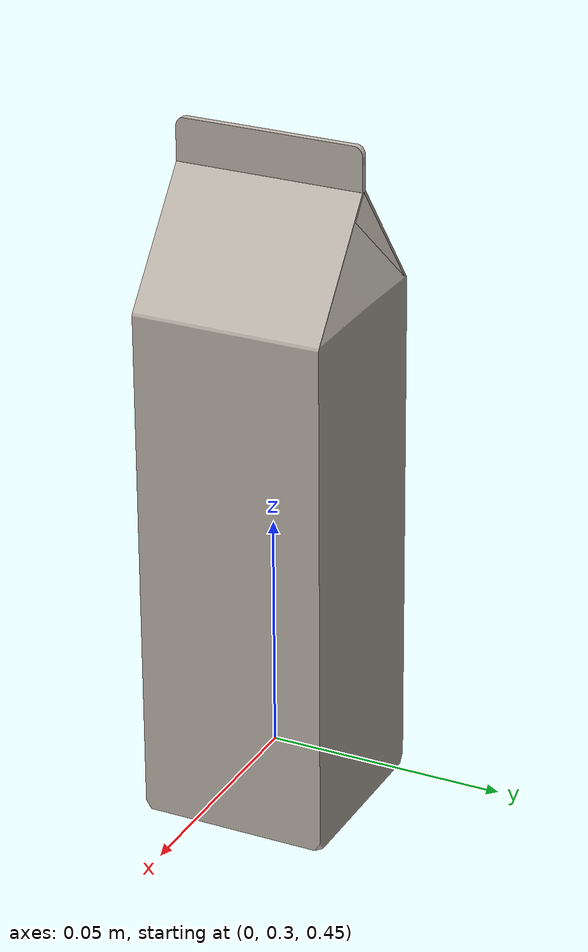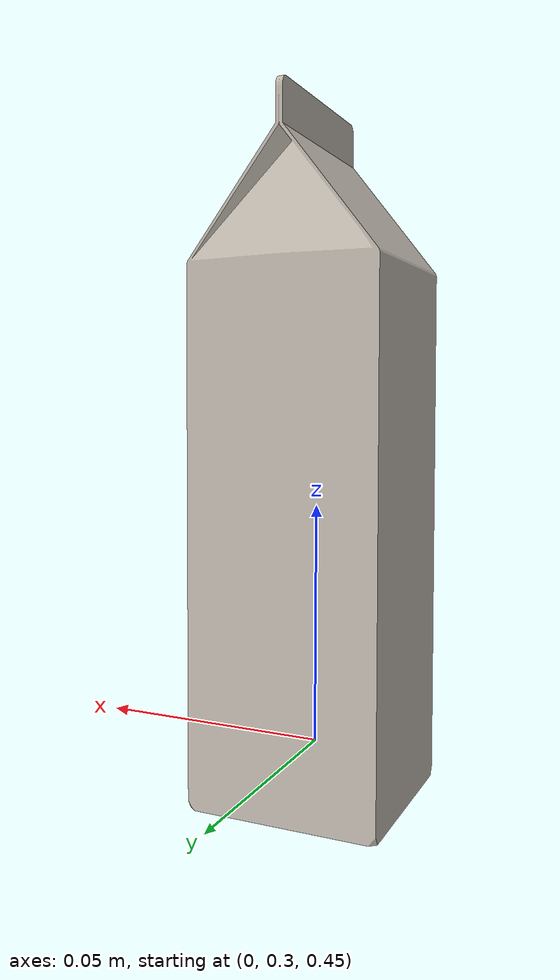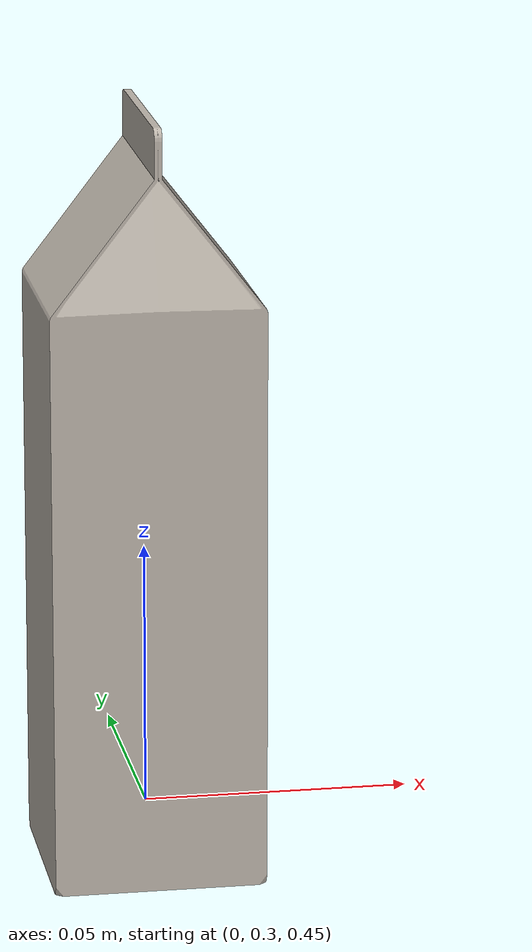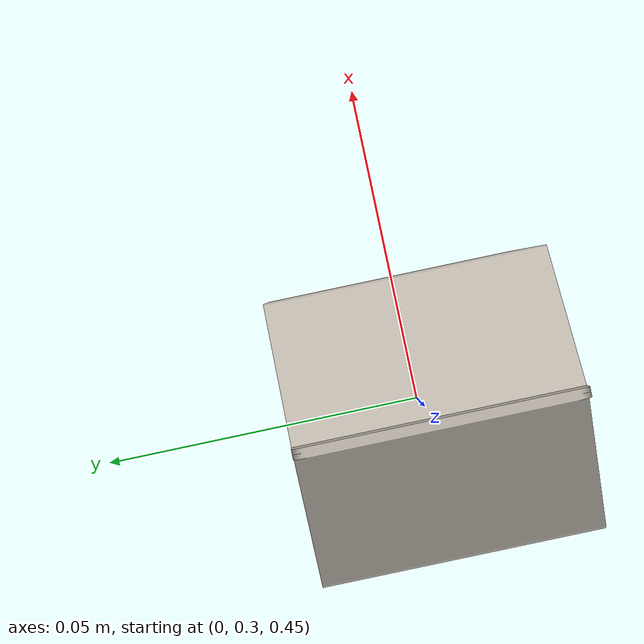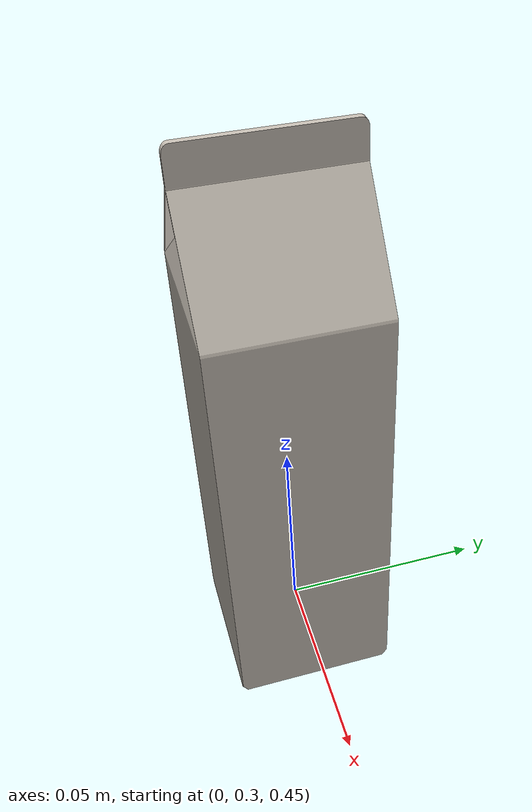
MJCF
<mujoco model="milk">
  <compiler angle="radian" meshdir="assets" texturedir="assets" autolimits="true"/>
  <asset>
    <mesh file="meshes/milk.msh" name="milk_mesh" scale="0.9 0.9 0.9"/>
    <texture file="textures/ceramic.png" name="tex-ceramic" type="2d"/>
    <material name="ceramic" reflectance="0.5" texrepeat="1 1" texture="tex-ceramic" texuniform="true"/>
  </asset>
  <worldbody>
    <body>
      <body name="object">
        <geom pos="0 0.3 0.5" mesh="milk_mesh" type="mesh" solimp="0.998 0.998 0.001" solref="0.001 1" density="100" friction="0.95 0.3 0.1" material="ceramic" group="0" condim="4"/>
      </body>
      <site rgba="0 0 0 0" size="0.005" pos="0 0 -0.085" name="bottom_site"/>
      <site rgba="0 0 0 0" size="0.005" pos="0 0 0.075" name="top_site"/>
      <site rgba="0 0 0 0" size="0.005" pos="0.025 0.025 0" name="horizontal_radius_site"/>
    </body>
  </worldbody>
</mujoco>
